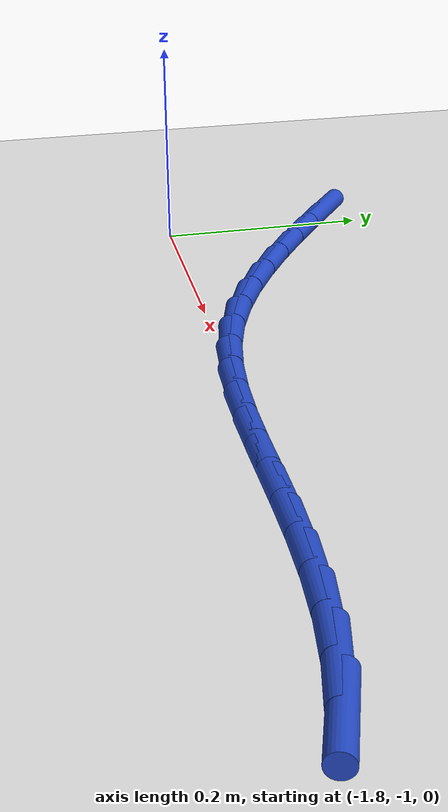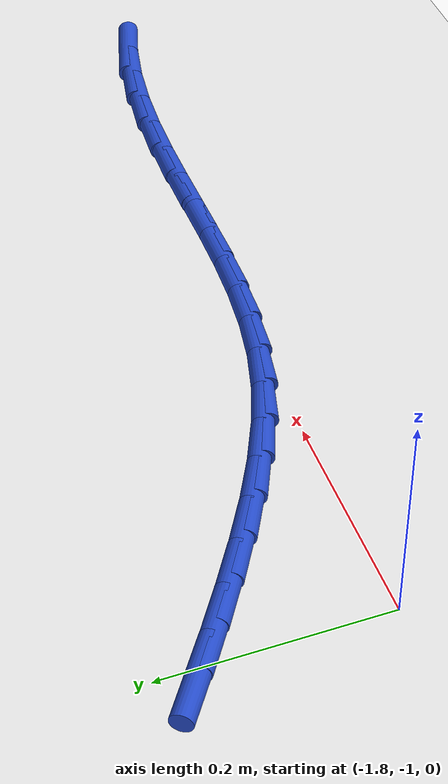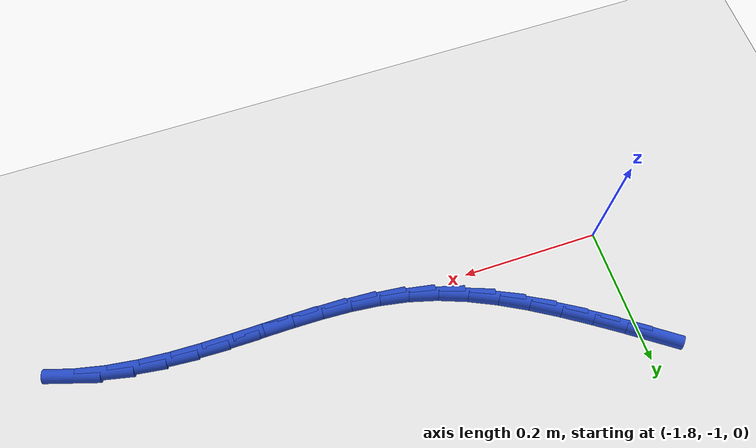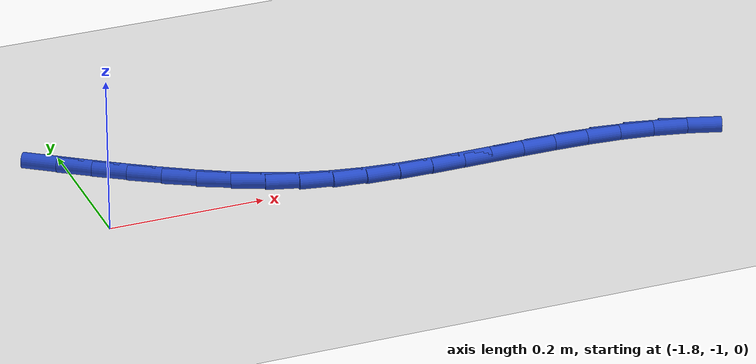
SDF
<sdf version="1.6">
 <world name="default">
  <model name="ground_plane">
   <static>1</static>
   <link name="link">
    <collision name="collision">
     <geometry><plane><normal>0 0 1</normal><size>100 100</size></plane></geometry>
     <surface><friction><ode><mu>100</mu><mu2>50</mu2></ode></friction></surface>
    </collision>
    <visual name="visual">
     <cast_shadows>0</cast_shadows>
     <geometry><plane><normal>0 0 1</normal><size>100 100</size></plane></geometry>
     <material>
      <script><uri>file://media/materials/scripts/gazebo.material</uri><name>Gazebo/WhiteGlow</name></script>
     </material>
    </visual>
   </link>
  </model>
  <model name="line">
   <link name="link_101">
    <pose>-1.8151546505056304 -0.8303834732965256 0.01 0 1.57 -0.6189894520632477</pose>
    <collision name="collision">
     <geometry><cylinder><radius>0.01</radius><length>0.08</length></cylinder></geometry>
    </collision>
    <visual name="visual">
     <material>
      <script><name>Gazebo/Blue</name><uri>file://media/materials/scripts/gazebo.material</uri></script>
     </material>
     <geometry><cylinder><radius>0.01</radius><length>0.08</length></cylinder></geometry>
    </visual>
   </link>
   <link name="link_102">
    <pose>-1.7779201865763106 -0.8569087288626628 0.01 0 1.57 -0.5972869722642423</pose>
    <collision name="collision">
     <geometry><cylinder><radius>0.01</radius><length>0.08</length></cylinder></geometry>
    </collision>
    <visual name="visual">
     <material>
      <script><name>Gazebo/Blue</name><uri>file://media/materials/scripts/gazebo.material</uri></script>
     </material>
     <geometry><cylinder><radius>0.01</radius><length>0.08</length></cylinder></geometry>
    </visual>
   </link>
   <link name="link_103">
    <pose>-1.740374209070023 -0.8824460510677764 0.01 0 1.57 -0.5761790677859423</pose>
    <collision name="collision">
     <geometry><cylinder><radius>0.01</radius><length>0.08</length></cylinder></geometry>
    </collision>
    <visual name="visual">
     <material>
      <script><name>Gazebo/Blue</name><uri>file://media/materials/scripts/gazebo.material</uri></script>
     </material>
     <geometry><cylinder><radius>0.01</radius><length>0.08</length></cylinder></geometry>
    </visual>
   </link>
   <link name="link_104">
    <pose>-1.7027775823156863 -0.906873369307607 0.01 0 1.57 -0.5437079308239728</pose>
    <collision name="collision">
     <geometry><cylinder><radius>0.01</radius><length>0.08</length></cylinder></geometry>
    </collision>
    <visual name="visual">
     <material>
      <script><name>Gazebo/Blue</name><uri>file://media/materials/scripts/gazebo.material</uri></script>
     </material>
     <geometry><cylinder><radius>0.01</radius><length>0.08</length></cylinder></geometry>
    </visual>
   </link>
   <link name="link_105">
    <pose>-1.6650205284827364 -0.9296967956181305 0.01 0 1.57 -0.4973655185020815</pose>
    <collision name="collision">
     <geometry><cylinder><radius>0.01</radius><length>0.08</length></cylinder></geometry>
    </collision>
    <visual name="visual">
     <material>
      <script><name>Gazebo/Blue</name><uri>file://media/materials/scripts/gazebo.material</uri></script>
     </material>
     <geometry><cylinder><radius>0.01</radius><length>0.08</length></cylinder></geometry>
    </visual>
   </link>
   <link name="link_106">
    <pose>-1.6269407783263696 -0.9503697841858252 0.01 0 1.57 -0.4361828411281267</pose>
    <collision name="collision">
     <geometry><cylinder><radius>0.01</radius><length>0.08</length></cylinder></geometry>
    </collision>
    <visual name="visual">
     <material>
      <script><name>Gazebo/Blue</name><uri>file://media/materials/scripts/gazebo.material</uri></script>
     </material>
     <geometry><cylinder><radius>0.01</radius><length>0.08</length></cylinder></geometry>
    </visual>
   </link>
   <link name="link_107">
    <pose>-1.5883760626017875 -0.9683457891971692 0.01 0 1.57 -0.35939642565055646</pose>
    <collision name="collision">
     <geometry><cylinder><radius>0.01</radius><length>0.08</length></cylinder></geometry>
    </collision>
    <visual name="visual">
     <material>
      <script><name>Gazebo/Blue</name><uri>file://media/materials/scripts/gazebo.material</uri></script>
     </material>
     <geometry><cylinder><radius>0.01</radius><length>0.08</length></cylinder></geometry>
    </visual>
   </link>
   <link name="link_108">
    <pose>-1.5491641120641872 -0.9830782648386417 0.01 0 1.57 -0.26749170983875625</pose>
    <collision name="collision">
     <geometry><cylinder><radius>0.01</radius><length>0.08</length></cylinder></geometry>
    </collision>
    <visual name="visual">
     <material>
      <script><name>Gazebo/Blue</name><uri>file://media/materials/scripts/gazebo.material</uri></script>
     </material>
     <geometry><cylinder><radius>0.01</radius><length>0.08</length></cylinder></geometry>
    </visual>
   </link>
   <link name="link_109">
    <pose>-1.5091477841495822 -0.9940451232885105 0.01 0 1.57 -0.17621349279881102</pose>
    <collision name="collision">
     <geometry><cylinder><radius>0.01</radius><length>0.08</length></cylinder></geometry>
    </collision>
    <visual name="visual">
     <material>
      <script><name>Gazebo/Blue</name><uri>file://media/materials/scripts/gazebo.material</uri></script>
     </material>
     <geometry><cylinder><radius>0.01</radius><length>0.08</length></cylinder></geometry>
    </visual>
   </link>
   <link name="link_110">
    <pose>-1.4682946891004318 -1.0013194382391244 0.01 0 1.57 -0.10227119873568766</pose>
    <collision name="collision">
     <geometry><cylinder><radius>0.01</radius><length>0.08</length></cylinder></geometry>
    </collision>
    <visual name="visual">
     <material>
      <script><name>Gazebo/Blue</name><uri>file://media/materials/scripts/gazebo.material</uri></script>
     </material>
     <geometry><cylinder><radius>0.01</radius><length>0.08</length></cylinder></geometry>
    </visual>
   </link>
   <link name="link_111">
    <pose>-1.4267011121041586 -1.0055881563468962 0.01 0 1.57 -0.04680883491929437</pose>
    <collision name="collision">
     <geometry><cylinder><radius>0.01</radius><length>0.08</length></cylinder></geometry>
    </collision>
    <visual name="visual">
     <material>
      <script><name>Gazebo/Blue</name><uri>file://media/materials/scripts/gazebo.material</uri></script>
     </material>
     <geometry><cylinder><radius>0.01</radius><length>0.08</length></cylinder></geometry>
    </visual>
   </link>
   <link name="link_112">
    <pose>-1.384469249692343 -1.0075664256741896 0.01 0 1.57 -0.009421930971307706</pose>
    <collision name="collision">
     <geometry><cylinder><radius>0.01</radius><length>0.08</length></cylinder></geometry>
    </collision>
    <visual name="visual">
     <material>
      <script><name>Gazebo/Blue</name><uri>file://media/materials/scripts/gazebo.material</uri></script>
     </material>
     <geometry><cylinder><radius>0.01</radius><length>0.08</length></cylinder></geometry>
    </visual>
   </link>
   <link name="link_113">
    <pose>-1.341701298396563 -1.0079693942833683 0.01 0 1.57 0.010582117393586835</pose>
    <collision name="collision">
     <geometry><cylinder><radius>0.01</radius><length>0.08</length></cylinder></geometry>
    </collision>
    <visual name="visual">
     <material>
      <script><name>Gazebo/Blue</name><uri>file://media/materials/scripts/gazebo.material</uri></script>
     </material>
     <geometry><cylinder><radius>0.01</radius><length>0.08</length></cylinder></geometry>
    </visual>
   </link>
   <link name="link_114">
    <pose>-1.2984994547483977 -1.007512210236796 0.01 0 1.57 0.013831869476159888</pose>
    <collision name="collision">
     <geometry><cylinder><radius>0.01</radius><length>0.08</length></cylinder></geometry>
    </collision>
    <visual name="visual">
     <material>
      <script><name>Gazebo/Blue</name><uri>file://media/materials/scripts/gazebo.material</uri></script>
     </material>
     <geometry><cylinder><radius>0.01</radius><length>0.08</length></cylinder></geometry>
    </visual>
   </link>
   <link name="link_115">
    <pose>-1.2549659152794257 -1.006910021596836 0.01 0 1.57 0.0007322426907593574</pose>
    <collision name="collision">
     <geometry><cylinder><radius>0.01</radius><length>0.08</length></cylinder></geometry>
    </collision>
    <visual name="visual">
     <material>
      <script><name>Gazebo/Blue</name><uri>file://media/materials/scripts/gazebo.material</uri></script>
     </material>
     <geometry><cylinder><radius>0.01</radius><length>0.08</length></cylinder></geometry>
    </visual>
   </link>
   <link name="link_116">
    <pose>-1.211202876521226 -1.0068779764258526 0.01 0 1.57 -0.028546278731681404</pose>
    <collision name="collision">
     <geometry><cylinder><radius>0.01</radius><length>0.08</length></cylinder></geometry>
    </collision>
    <visual name="visual">
     <material>
      <script><name>Gazebo/Blue</name><uri>file://media/materials/scripts/gazebo.material</uri></script>
     </material>
     <geometry><cylinder><radius>0.01</radius><length>0.08</length></cylinder></geometry>
    </visual>
   </link>
   <link name="link_117">
    <pose>-1.1673125350053783 -1.008131222786209 0.01 0 1.57 -0.07395465994751746</pose>
    <collision name="collision">
     <geometry><cylinder><radius>0.01</radius><length>0.08</length></cylinder></geometry>
    </collision>
    <visual name="visual">
     <material>
      <script><name>Gazebo/Blue</name><uri>file://media/materials/scripts/gazebo.material</uri></script>
     </material>
     <geometry><cylinder><radius>0.01</radius><length>0.08</length></cylinder></geometry>
    </visual>
   </link>
   <link name="link_118">
    <pose>-1.1233970872634607 -1.0113849087402684 0.01 0 1.57 -0.13533322876493653</pose>
    <collision name="collision">
     <geometry><cylinder><radius>0.01</radius><length>0.08</length></cylinder></geometry>
    </collision>
    <visual name="visual">
     <material>
      <script><name>Gazebo/Blue</name><uri>file://media/materials/scripts/gazebo.material</uri></script>
     </material>
     <geometry><cylinder><radius>0.01</radius><length>0.08</length></cylinder></geometry>
    </visual>
   </link>
   <link name="link_119">
    <pose>-1.0795587298270528 -1.0173541823503955 0.01 0 1.57 -0.21206751571557728</pose>
    <collision name="collision">
     <geometry><cylinder><radius>0.01</radius><length>0.08</length></cylinder></geometry>
    </collision>
    <visual name="visual">
     <material>
      <script><name>Gazebo/Blue</name><uri>file://media/materials/scripts/gazebo.material</uri></script>
     </material>
     <geometry><cylinder><radius>0.01</radius><length>0.08</length></cylinder></geometry>
    </visual>
   </link>
   <link name="link_120">
    <pose>-1.0358996592277332 -1.0267541916789535 0.01 0 1.57 -0.29949340421228016</pose>
    <collision name="collision">
     <geometry><cylinder><radius>0.01</radius><length>0.08</length></cylinder></geometry>
    </collision>
    <visual name="visual">
     <material>
      <script><name>Gazebo/Blue</name><uri>file://media/materials/scripts/gazebo.material</uri></script>
     </material>
     <geometry><cylinder><radius>0.01</radius><length>0.08</length></cylinder></geometry>
    </visual>
   </link>
  </model>
 </world>
</sdf>
